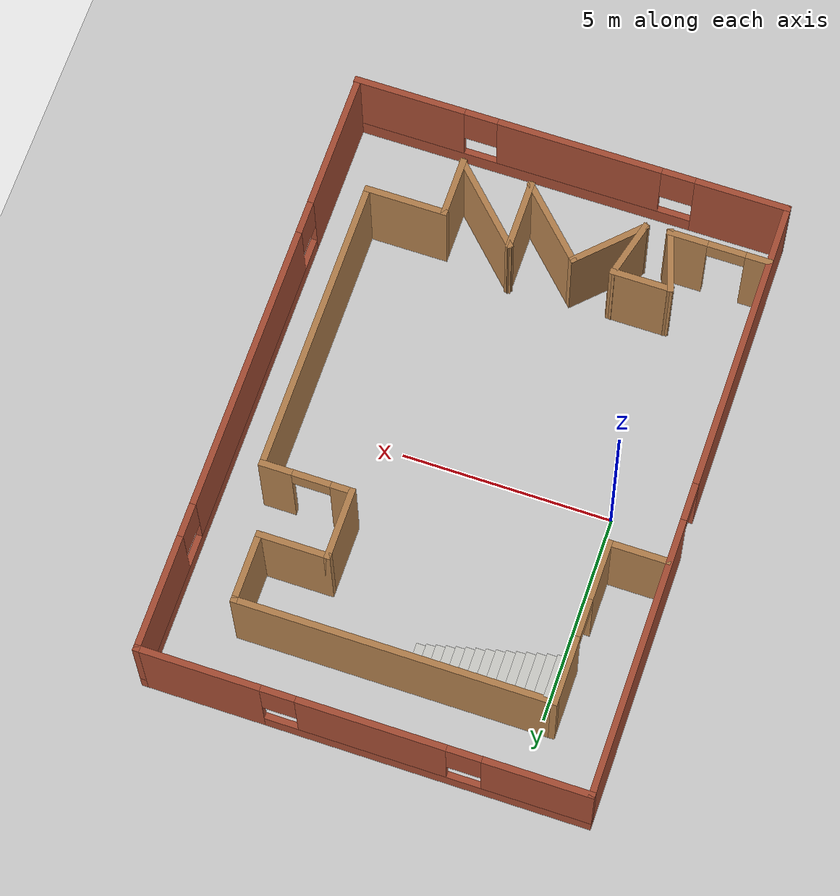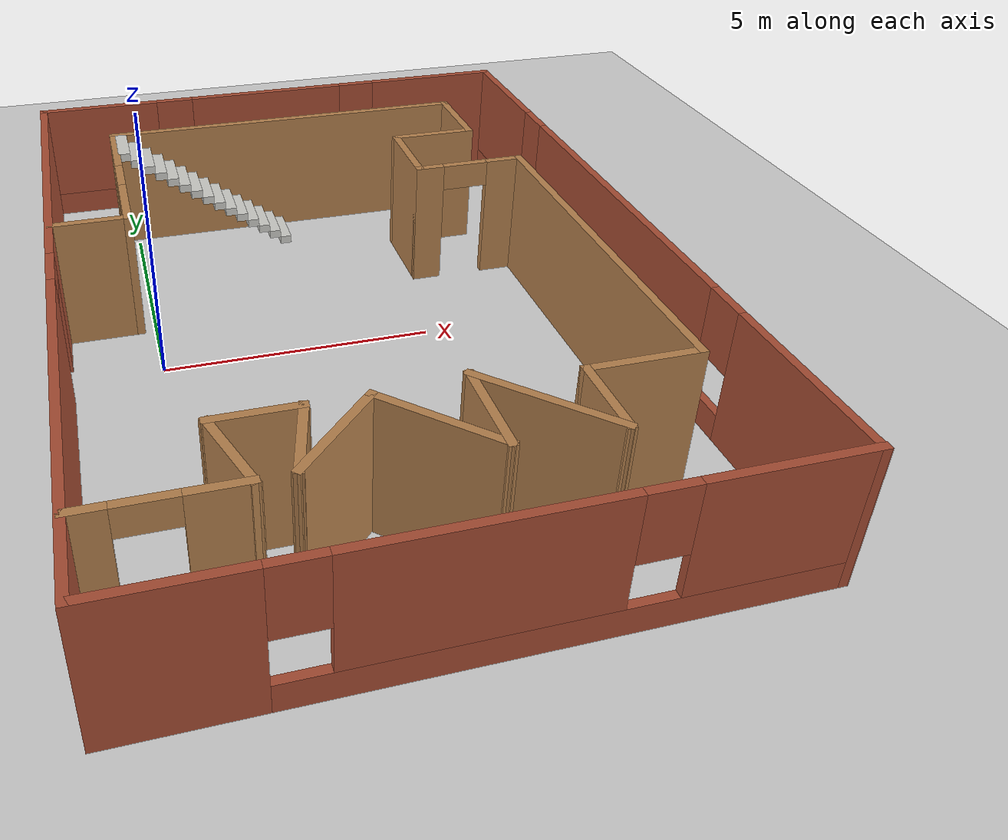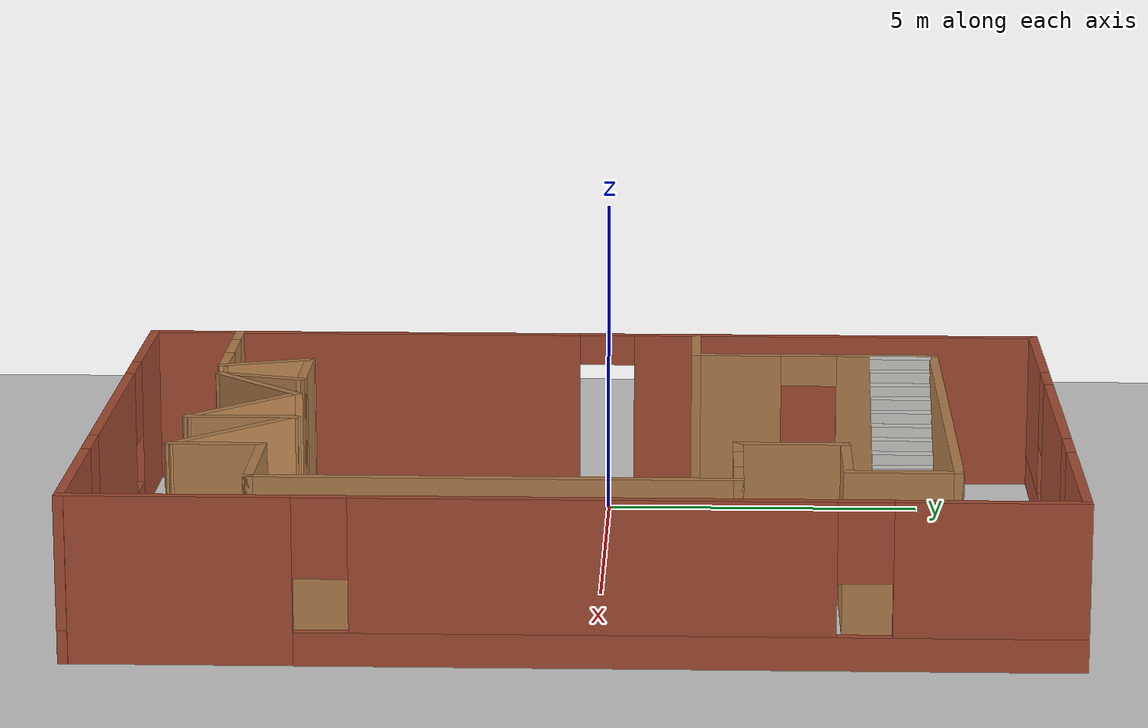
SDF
<sdf version="1.7">
 <world name="default">
  <light name="sun" type="directional">
   <pose>0 0 10 0 -0 0</pose>
   <diffuse>0.8 0.8 0.8 1</diffuse>
   <specular>0.2 0.2 0.2 1</specular>
   <attenuation>
    <range>1000</range>
    <constant>0.9</constant>
    <linear>0.01</linear>
    <quadratic>0.001</quadratic>
   </attenuation>
   <direction>-0.5 0.1 -0.9</direction>
   <spot><inner_angle>0</inner_angle><outer_angle>0</outer_angle><falloff>0</falloff></spot>
  </light>
  <model name="ground_plane">
   <static>1</static>
   <link name="link">
    <collision name="collision">
     <geometry><plane><normal>0 0 1</normal><size>100 100</size></plane></geometry>
     <surface>
      <contact><collide_bitmask>65535</collide_bitmask></contact>
      <friction><ode><mu>100</mu><mu2>50</mu2></ode></friction>
     </surface>
    </collision>
    <visual name="visual">
     <cast_shadows>0</cast_shadows>
     <geometry><plane><normal>0 0 1</normal><size>100 100</size></plane></geometry>
     <material>
      <script><uri>file://media/materials/scripts/gazebo.material</uri><name>Gazebo/Grey</name></script>
     </material>
    </visual>
   </link>
  </model>
  <gravity>0 0 -9.8</gravity>
  <magnetic_field>6e-06 2.3e-05 -4.2e-05</magnetic_field>
  <atmosphere type="adiabatic"/>
  <physics type="ode">
   <max_step_size>0.001</max_step_size>
   <real_time_factor>1</real_time_factor>
   <real_time_update_rate>1000</real_time_update_rate>
  </physics>
  <scene><ambient>0.4 0.4 0.4 1</ambient><background>0.7 0.7 0.7 1</background><shadows>1</shadows></scene>
  <audio><device>default</device></audio>
  <spherical_coordinates>
   <surface_model>EARTH_WGS84</surface_model>
   <latitude_deg>0</latitude_deg>
   <longitude_deg>0</longitude_deg>
   <elevation>0</elevation>
   <heading_deg>0</heading_deg>
  </spherical_coordinates>
  <model name="polygon">
   <pose>3.503 -0.322863 0 0 0 -1.57081</pose>
   <link name="Stairs_3">
    <visual name="Stairs_3_Visual_0">
     <pose>-5.03618 -0.376774 0.083333 0 -0 0</pose>
     <geometry><box><size>1 0.233333 0.166667</size></box></geometry>
     <material>
      <script><uri>file://media/materials/scripts/gazebo.material</uri><name>Gazebo/CeilingTiled</name></script>
      <ambient>1 1 1 1</ambient>
     </material>
     <meta><layer>0</layer></meta>
    </visual>
    <collision name="Stairs_3_Collision_0">
     <geometry><box><size>1 0.233333 0.166667</size></box></geometry>
     <pose>-5.03618 -0.376774 0.083333 0 -0 0</pose>
    </collision>
    <visual name="Stairs_3_Visual_1">
     <pose>-5.03618 -0.610107 0.25 0 -0 0</pose>
     <geometry><box><size>1 0.233333 0.166667</size></box></geometry>
     <material>
      <script><uri>file://media/materials/scripts/gazebo.material</uri><name>Gazebo/CeilingTiled</name></script>
      <ambient>1 1 1 1</ambient>
     </material>
     <meta><layer>0</layer></meta>
    </visual>
    <collision name="Stairs_3_Collision_1">
     <geometry><box><size>1 0.233333 0.166667</size></box></geometry>
     <pose>-5.03618 -0.610107 0.25 0 -0 0</pose>
    </collision>
    <visual name="Stairs_3_Visual_2">
     <pose>-5.03618 -0.84344 0.416667 0 -0 0</pose>
     <geometry><box><size>1 0.233333 0.166667</size></box></geometry>
     <material>
      <script><uri>file://media/materials/scripts/gazebo.material</uri><name>Gazebo/CeilingTiled</name></script>
      <ambient>1 1 1 1</ambient>
     </material>
     <meta><layer>0</layer></meta>
    </visual>
    <collision name="Stairs_3_Collision_2">
     <geometry><box><size>1 0.233333 0.166667</size></box></geometry>
     <pose>-5.03618 -0.84344 0.416667 0 -0 0</pose>
    </collision>
    <visual name="Stairs_3_Visual_3">
     <pose>-5.03618 -1.07677 0.583333 0 -0 0</pose>
     <geometry><box><size>1 0.233333 0.166667</size></box></geometry>
     <material>
      <script><uri>file://media/materials/scripts/gazebo.material</uri><name>Gazebo/CeilingTiled</name></script>
      <ambient>1 1 1 1</ambient>
     </material>
     <meta><layer>0</layer></meta>
    </visual>
    <collision name="Stairs_3_Collision_3">
     <geometry><box><size>1 0.233333 0.166667</size></box></geometry>
     <pose>-5.03618 -1.07677 0.583333 0 -0 0</pose>
    </collision>
    <visual name="Stairs_3_Visual_4">
     <pose>-5.03618 -1.31011 0.75 0 -0 0</pose>
     <geometry><box><size>1 0.233333 0.166667</size></box></geometry>
     <material>
      <script><uri>file://media/materials/scripts/gazebo.material</uri><name>Gazebo/CeilingTiled</name></script>
      <ambient>1 1 1 1</ambient>
     </material>
     <meta><layer>0</layer></meta>
    </visual>
    <collision name="Stairs_3_Collision_4">
     <geometry><box><size>1 0.233333 0.166667</size></box></geometry>
     <pose>-5.03618 -1.31011 0.75 0 -0 0</pose>
    </collision>
    <visual name="Stairs_3_Visual_5">
     <pose>-5.03618 -1.54344 0.916667 0 -0 0</pose>
     <geometry><box><size>1 0.233333 0.166667</size></box></geometry>
     <material>
      <script><uri>file://media/materials/scripts/gazebo.material</uri><name>Gazebo/CeilingTiled</name></script>
      <ambient>1 1 1 1</ambient>
     </material>
     <meta><layer>0</layer></meta>
    </visual>
    <collision name="Stairs_3_Collision_5">
     <geometry><box><size>1 0.233333 0.166667</size></box></geometry>
     <pose>-5.03618 -1.54344 0.916667 0 -0 0</pose>
    </collision>
    <visual name="Stairs_3_Visual_6">
     <pose>-5.03618 -1.77677 1.08333 0 -0 0</pose>
     <geometry><box><size>1 0.233333 0.166667</size></box></geometry>
     <material>
      <script><uri>file://media/materials/scripts/gazebo.material</uri><name>Gazebo/CeilingTiled</name></script>
      <ambient>1 1 1 1</ambient>
     </material>
     <meta><layer>0</layer></meta>
    </visual>
    <collision name="Stairs_3_Collision_6">
     <geometry><box><size>1 0.233333 0.166667</size></box></geometry>
     <pose>-5.03618 -1.77677 1.08333 0 -0 0</pose>
    </collision>
    <visual name="Stairs_3_Visual_7">
     <pose>-5.03618 -2.01011 1.25 0 -0 0</pose>
     <geometry><box><size>1 0.233333 0.166667</size></box></geometry>
     <material>
      <script><uri>file://media/materials/scripts/gazebo.material</uri><name>Gazebo/CeilingTiled</name></script>
      <ambient>1 1 1 1</ambient>
     </material>
     <meta><layer>0</layer></meta>
    </visual>
    <collision name="Stairs_3_Collision_7">
     <geometry><box><size>1 0.233333 0.166667</size></box></geometry>
     <pose>-5.03618 -2.01011 1.25 0 -0 0</pose>
    </collision>
    <visual name="Stairs_3_Visual_8">
     <pose>-5.03618 -2.24344 1.41667 0 -0 0</pose>
     <geometry><box><size>1 0.233333 0.166667</size></box></geometry>
     <material>
      <script><uri>file://media/materials/scripts/gazebo.material</uri><name>Gazebo/CeilingTiled</name></script>
      <ambient>1 1 1 1</ambient>
     </material>
     <meta><layer>0</layer></meta>
    </visual>
    <collision name="Stairs_3_Collision_8">
     <geometry><box><size>1 0.233333 0.166667</size></box></geometry>
     <pose>-5.03618 -2.24344 1.41667 0 -0 0</pose>
    </collision>
    <visual name="Stairs_3_Visual_9">
     <pose>-5.03618 -2.47677 1.58333 0 -0 0</pose>
     <geometry><box><size>1 0.233333 0.166667</size></box></geometry>
     <material>
      <script><uri>file://media/materials/scripts/gazebo.material</uri><name>Gazebo/CeilingTiled</name></script>
      <ambient>1 1 1 1</ambient>
     </material>
     <meta><layer>0</layer></meta>
    </visual>
    <collision name="Stairs_3_Collision_9">
     <geometry><box><size>1 0.233333 0.166667</size></box></geometry>
     <pose>-5.03618 -2.47677 1.58333 0 -0 0</pose>
    </collision>
    <visual name="Stairs_3_Visual_10">
     <pose>-5.03618 -2.71011 1.75 0 -0 0</pose>
     <geometry><box><size>1 0.233333 0.166667</size></box></geometry>
     <material>
      <script><uri>file://media/materials/scripts/gazebo.material</uri><name>Gazebo/CeilingTiled</name></script>
      <ambient>1 1 1 1</ambient>
     </material>
     <meta><layer>0</layer></meta>
    </visual>
    <collision name="Stairs_3_Collision_10">
     <geometry><box><size>1 0.233333 0.166667</size></box></geometry>
     <pose>-5.03618 -2.71011 1.75 0 -0 0</pose>
    </collision>
    <visual name="Stairs_3_Visual_11">
     <pose>-5.03618 -2.94344 1.91667 0 -0 0</pose>
     <geometry><box><size>1 0.233333 0.166667</size></box></geometry>
     <material>
      <script><uri>file://media/materials/scripts/gazebo.material</uri><name>Gazebo/CeilingTiled</name></script>
      <ambient>1 1 1 1</ambient>
     </material>
     <meta><layer>0</layer></meta>
    </visual>
    <collision name="Stairs_3_Collision_11">
     <geometry><box><size>1 0.233333 0.166667</size></box></geometry>
     <pose>-5.03618 -2.94344 1.91667 0 -0 0</pose>
    </collision>
    <visual name="Stairs_3_Visual_12">
     <pose>-5.03618 -3.17677 2.08333 0 -0 0</pose>
     <geometry><box><size>1 0.233333 0.166667</size></box></geometry>
     <material>
      <script><uri>file://media/materials/scripts/gazebo.material</uri><name>Gazebo/CeilingTiled</name></script>
      <ambient>1 1 1 1</ambient>
     </material>
     <meta><layer>0</layer></meta>
    </visual>
    <collision name="Stairs_3_Collision_12">
     <geometry><box><size>1 0.233333 0.166667</size></box></geometry>
     <pose>-5.03618 -3.17677 2.08333 0 -0 0</pose>
    </collision>
    <visual name="Stairs_3_Visual_13">
     <pose>-5.03618 -3.41011 2.25 0 -0 0</pose>
     <geometry><box><size>1 0.233333 0.166667</size></box></geometry>
     <material>
      <script><uri>file://media/materials/scripts/gazebo.material</uri><name>Gazebo/CeilingTiled</name></script>
      <ambient>1 1 1 1</ambient>
     </material>
     <meta><layer>0</layer></meta>
    </visual>
    <collision name="Stairs_3_Collision_13">
     <geometry><box><size>1 0.233333 0.166667</size></box></geometry>
     <pose>-5.03618 -3.41011 2.25 0 -0 0</pose>
    </collision>
    <visual name="Stairs_3_Visual_14">
     <pose>-5.03618 -3.64344 2.41667 0 -0 0</pose>
     <geometry><box><size>1 0.233333 0.166667</size></box></geometry>
     <material>
      <script><uri>file://media/materials/scripts/gazebo.material</uri><name>Gazebo/CeilingTiled</name></script>
      <ambient>1 1 1 1</ambient>
     </material>
     <meta><layer>0</layer></meta>
    </visual>
    <collision name="Stairs_3_Collision_14">
     <geometry><box><size>1 0.233333 0.166667</size></box></geometry>
     <pose>-5.03618 -3.64344 2.41667 0 -0 0</pose>
    </collision>
   </link>
   <link name="Wall_14">
    <pose>-7.3 -0.013508 0 0 -0 -1.5708</pose>
    <visual name="Wall_14_Visual_0">
     <pose>-3.79569 0 1.25 0 -0 0</pose>
     <geometry><box><size>2.91592 0.15 2.5</size></box></geometry>
     <material>
      <script><uri>file://media/materials/scripts/gazebo.material</uri><name>Gazebo/Bricks</name></script>
      <ambient>1 1 1 1</ambient>
     </material>
     <meta><layer>0</layer></meta>
    </visual>
    <collision name="Wall_14_Collision_0">
     <geometry><box><size>2.91592 0.15 2.5</size></box></geometry>
     <pose>-3.79569 0 1.25 0 -0 0</pose>
    </collision>
    <visual name="Wall_14_Visual_1">
     <pose>1.45796 0 0.25 0 -0 0</pose>
     <geometry><box><size>7.59137 0.15 0.5</size></box></geometry>
     <material>
      <script><uri>file://media/materials/scripts/gazebo.material</uri><name>Gazebo/Bricks</name></script>
      <ambient>1 1 1 1</ambient>
     </material>
     <meta><layer>0</layer></meta>
    </visual>
    <collision name="Wall_14_Collision_1">
     <geometry><box><size>7.59137 0.15 0.5</size></box></geometry>
     <pose>1.45796 0 0.25 0 -0 0</pose>
    </collision>
    <visual name="Wall_14_Visual_2">
     <pose>0.184022 0 1.5 0 -0 0</pose>
     <geometry><box><size>3.4435 0.15 2</size></box></geometry>
     <material>
      <script><uri>file://media/materials/scripts/gazebo.material</uri><name>Gazebo/Bricks</name></script>
      <ambient>1 1 1 1</ambient>
     </material>
     <meta><layer>0</layer></meta>
    </visual>
    <collision name="Wall_14_Collision_2">
     <geometry><box><size>3.4435 0.15 2</size></box></geometry>
     <pose>0.184022 0 1.5 0 -0 0</pose>
    </collision>
    <visual name="Wall_14_Visual_3">
     <pose>3.97971 0 1.5 0 -0 0</pose>
     <geometry><box><size>2.54787 0.15 2</size></box></geometry>
     <material>
      <script><uri>file://media/materials/scripts/gazebo.material</uri><name>Gazebo/Bricks</name></script>
      <ambient>1 1 1 1</ambient>
     </material>
     <meta><layer>0</layer></meta>
    </visual>
    <collision name="Wall_14_Collision_3">
     <geometry><box><size>2.54787 0.15 2</size></box></geometry>
     <pose>3.97971 0 1.5 0 -0 0</pose>
    </collision>
    <visual name="Wall_14_Visual_4">
     <pose>-1.93773 0 1.9 0 -0 0</pose>
     <geometry><box><size>0.8 0.15 1.2</size></box></geometry>
     <material>
      <script><uri>file://media/materials/scripts/gazebo.material</uri><name>Gazebo/Bricks</name></script>
      <ambient>1 1 1 1</ambient>
     </material>
     <meta><layer>0</layer></meta>
    </visual>
    <collision name="Wall_14_Collision_4">
     <geometry><box><size>0.8 0.15 1.2</size></box></geometry>
     <pose>-1.93773 0 1.9 0 -0 0</pose>
    </collision>
    <visual name="Wall_14_Visual_5">
     <pose>2.30577 0 1.9 0 -0 0</pose>
     <geometry><box><size>0.8 0.15 1.2</size></box></geometry>
     <material>
      <script><uri>file://media/materials/scripts/gazebo.material</uri><name>Gazebo/Bricks</name></script>
      <ambient>1 1 1 1</ambient>
     </material>
     <meta><layer>0</layer></meta>
    </visual>
    <collision name="Wall_14_Collision_5">
     <geometry><box><size>0.8 0.15 1.2</size></box></geometry>
     <pose>2.30577 0 1.9 0 -0 0</pose>
    </collision>
   </link>
   <link name="Wall_15">
    <pose>0 -5.19215 0 0 -0 0</pose>
    <visual name="Wall_15_Visual_0">
     <pose>-4.03484 0 1.25 0 -0 0</pose>
     <geometry><box><size>6.68031 0.15 2.5</size></box></geometry>
     <material>
      <script><uri>file://media/materials/scripts/gazebo.material</uri><name>Gazebo/Bricks</name></script>
      <ambient>1 1 1 1</ambient>
     </material>
     <meta><layer>0</layer></meta>
    </visual>
    <collision name="Wall_15_Collision_0">
     <geometry><box><size>6.68031 0.15 2.5</size></box></geometry>
     <pose>-4.03484 0 1.25 0 -0 0</pose>
    </collision>
    <visual name="Wall_15_Visual_1">
     <pose>3.79015 0 1.25 0 -0 0</pose>
     <geometry><box><size>7.16969 0.15 2.5</size></box></geometry>
     <material>
      <script><uri>file://media/materials/scripts/gazebo.material</uri><name>Gazebo/Bricks</name></script>
      <ambient>1 1 1 1</ambient>
     </material>
     <meta><layer>0</layer></meta>
    </visual>
    <collision name="Wall_15_Collision_1">
     <geometry><box><size>7.16969 0.15 2.5</size></box></geometry>
     <pose>3.79015 0 1.25 0 -0 0</pose>
    </collision>
    <visual name="Wall_15_Visual_2">
     <pose>-0.244689 0 2.25 0 -0 0</pose>
     <geometry><box><size>0.9 0.15 0.5</size></box></geometry>
     <material>
      <script><uri>file://media/materials/scripts/gazebo.material</uri><name>Gazebo/Bricks</name></script>
      <ambient>1 1 1 1</ambient>
     </material>
     <meta><layer>0</layer></meta>
    </visual>
    <collision name="Wall_15_Collision_2">
     <geometry><box><size>0.9 0.15 0.5</size></box></geometry>
     <pose>-0.244689 0 2.25 0 -0 0</pose>
    </collision>
   </link>
   <link name="Wall_16">
    <pose>7.3 -0 0 0 -0 1.5708</pose>
    <visual name="Wall_16_Visual_0">
     <pose>-4.13122 0 1.25 0 -0 0</pose>
     <geometry><box><size>2.27187 0.15 2.5</size></box></geometry>
     <material>
      <script><uri>file://media/materials/scripts/gazebo.material</uri><name>Gazebo/Bricks</name></script>
      <ambient>1 1 1 1</ambient>
     </material>
     <meta><layer>0</layer></meta>
    </visual>
    <collision name="Wall_16_Collision_0">
     <geometry><box><size>2.27187 0.15 2.5</size></box></geometry>
     <pose>-4.13122 0 1.25 0 -0 0</pose>
    </collision>
    <visual name="Wall_16_Visual_1">
     <pose>1.13594 0 0.25 0 -0 0</pose>
     <geometry><box><size>8.26243 0.15 0.5</size></box></geometry>
     <material>
      <script><uri>file://media/materials/scripts/gazebo.material</uri><name>Gazebo/Bricks</name></script>
      <ambient>1 1 1 1</ambient>
     </material>
     <meta><layer>0</layer></meta>
    </visual>
    <collision name="Wall_16_Collision_1">
     <geometry><box><size>8.26243 0.15 0.5</size></box></geometry>
     <pose>1.13594 0 0.25 0 -0 0</pose>
    </collision>
    <visual name="Wall_16_Visual_2">
     <pose>-0.21478 0 1.5 0 -0 0</pose>
     <geometry><box><size>3.961 0.15 2</size></box></geometry>
     <material>
      <script><uri>file://media/materials/scripts/gazebo.material</uri><name>Gazebo/Bricks</name></script>
      <ambient>1 1 1 1</ambient>
     </material>
     <meta><layer>0</layer></meta>
    </visual>
    <collision name="Wall_16_Collision_2">
     <geometry><box><size>3.961 0.15 2</size></box></geometry>
     <pose>-0.21478 0 1.5 0 -0 0</pose>
    </collision>
    <visual name="Wall_16_Visual_3">
     <pose>3.91644 0 1.5 0 -0 0</pose>
     <geometry><box><size>2.70143 0.15 2</size></box></geometry>
     <material>
      <script><uri>file://media/materials/scripts/gazebo.material</uri><name>Gazebo/Bricks</name></script>
      <ambient>1 1 1 1</ambient>
     </material>
     <meta><layer>0</layer></meta>
    </visual>
    <collision name="Wall_16_Collision_3">
     <geometry><box><size>2.70143 0.15 2</size></box></geometry>
     <pose>3.91644 0 1.5 0 -0 0</pose>
    </collision>
    <visual name="Wall_16_Visual_4">
     <pose>-2.59528 0 1.9 0 -0 0</pose>
     <geometry><box><size>0.8 0.15 1.2</size></box></geometry>
     <material>
      <script><uri>file://media/materials/scripts/gazebo.material</uri><name>Gazebo/Bricks</name></script>
      <ambient>1 1 1 1</ambient>
     </material>
     <meta><layer>0</layer></meta>
    </visual>
    <collision name="Wall_16_Collision_4">
     <geometry><box><size>0.8 0.15 1.2</size></box></geometry>
     <pose>-2.59528 0 1.9 0 -0 0</pose>
    </collision>
    <visual name="Wall_16_Visual_5">
     <pose>2.16572 0 1.9 0 -0 0</pose>
     <geometry><box><size>0.8 0.15 1.2</size></box></geometry>
     <material>
      <script><uri>file://media/materials/scripts/gazebo.material</uri><name>Gazebo/Bricks</name></script>
      <ambient>1 1 1 1</ambient>
     </material>
     <meta><layer>0</layer></meta>
    </visual>
    <collision name="Wall_16_Collision_5">
     <geometry><box><size>0.8 0.15 1.2</size></box></geometry>
     <pose>2.16572 0 1.9 0 -0 0</pose>
    </collision>
   </link>
   <link name="Wall_17">
    <pose>0 5.175 0 0 -0 3.14159</pose>
    <visual name="Wall_17_Visual_0">
     <pose>-5.6799 0 1.25 0 -0 0</pose>
     <geometry><box><size>3.39019 0.15 2.5</size></box></geometry>
     <material>
      <script><uri>file://media/materials/scripts/gazebo.material</uri><name>Gazebo/Bricks</name></script>
      <ambient>1 1 1 1</ambient>
     </material>
     <meta><layer>0</layer></meta>
    </visual>
    <collision name="Wall_17_Collision_0">
     <geometry><box><size>3.39019 0.15 2.5</size></box></geometry>
     <pose>-5.6799 0 1.25 0 -0 0</pose>
    </collision>
    <visual name="Wall_17_Visual_1">
     <pose>1.6951 0 0.25 0 -0 0</pose>
     <geometry><box><size>11.3598 0.15 0.5</size></box></geometry>
     <material>
      <script><uri>file://media/materials/scripts/gazebo.material</uri><name>Gazebo/Bricks</name></script>
      <ambient>1 1 1 1</ambient>
     </material>
     <meta><layer>0</layer></meta>
    </visual>
    <collision name="Wall_17_Collision_1">
     <geometry><box><size>11.3598 0.15 0.5</size></box></geometry>
     <pose>1.6951 0 0.25 0 -0 0</pose>
    </collision>
    <visual name="Wall_17_Visual_2">
     <pose>0.296439 0 1.5 0 -0 0</pose>
     <geometry><box><size>6.9625 0.15 2</size></box></geometry>
     <material>
      <script><uri>file://media/materials/scripts/gazebo.material</uri><name>Gazebo/Bricks</name></script>
      <ambient>1 1 1 1</ambient>
     </material>
     <meta><layer>0</layer></meta>
    </visual>
    <collision name="Wall_17_Collision_2">
     <geometry><box><size>6.9625 0.15 2</size></box></geometry>
     <pose>0.296439 0 1.5 0 -0 0</pose>
    </collision>
    <visual name="Wall_17_Visual_3">
     <pose>5.97635 0 1.5 0 -0 0</pose>
     <geometry><box><size>2.79731 0.15 2</size></box></geometry>
     <material>
      <script><uri>file://media/materials/scripts/gazebo.material</uri><name>Gazebo/Bricks</name></script>
      <ambient>1 1 1 1</ambient>
     </material>
     <meta><layer>0</layer></meta>
    </visual>
    <collision name="Wall_17_Collision_3">
     <geometry><box><size>2.79731 0.15 2</size></box></geometry>
     <pose>5.97635 0 1.5 0 -0 0</pose>
    </collision>
    <visual name="Wall_17_Visual_4">
     <pose>-3.58481 0 1.9 0 -0 0</pose>
     <geometry><box><size>0.8 0.15 1.2</size></box></geometry>
     <material>
      <script><uri>file://media/materials/scripts/gazebo.material</uri><name>Gazebo/Bricks</name></script>
      <ambient>1 1 1 1</ambient>
     </material>
     <meta><layer>0</layer></meta>
    </visual>
    <collision name="Wall_17_Collision_4">
     <geometry><box><size>0.8 0.15 1.2</size></box></geometry>
     <pose>-3.58481 0 1.9 0 -0 0</pose>
    </collision>
    <visual name="Wall_17_Visual_5">
     <pose>4.17769 0 1.9 0 -0 0</pose>
     <geometry><box><size>0.8 0.15 1.2</size></box></geometry>
     <material>
      <script><uri>file://media/materials/scripts/gazebo.material</uri><name>Gazebo/Bricks</name></script>
      <ambient>1 1 1 1</ambient>
     </material>
     <meta><layer>0</layer></meta>
    </visual>
    <collision name="Wall_17_Collision_5">
     <geometry><box><size>0.8 0.15 1.2</size></box></geometry>
     <pose>4.17769 0 1.9 0 -0 0</pose>
    </collision>
   </link>
   <link name="Wall_21">
    <collision name="Wall_21_Collision">
     <geometry><box><size>1.5 0.15 2.5</size></box></geometry>
     <pose>0 0 1.25 0 -0 0</pose>
    </collision>
    <visual name="Wall_21_Visual">
     <pose>0 0 1.25 0 -0 0</pose>
     <geometry><box><size>1.5 0.15 2.5</size></box></geometry>
     <material>
      <script><uri>file://media/materials/scripts/gazebo.material</uri><name>Gazebo/Wood</name></script>
      <ambient>1 1 1 1</ambient>
     </material>
     <meta><layer>0</layer></meta>
    </visual>
    <pose>-1.72819 -4.47328 0 0 -0 1.5708</pose>
   </link>
   <link name="Wall_22">
    <pose>-3.65319 -3.79828 0 0 -0 3.14159</pose>
    <visual name="Wall_22_Visual_0">
     <pose>-1.27291 0 1.25 0 -0 0</pose>
     <geometry><box><size>1.45418 0.15 2.5</size></box></geometry>
     <material>
      <script><uri>file://media/materials/scripts/gazebo.material</uri><name>Gazebo/Wood</name></script>
      <ambient>1 1 1 1</ambient>
     </material>
     <meta><layer>0</layer></meta>
    </visual>
    <collision name="Wall_22_Collision_0">
     <geometry><box><size>1.45418 0.15 2.5</size></box></geometry>
     <pose>-1.27291 0 1.25 0 -0 0</pose>
    </collision>
    <visual name="Wall_22_Visual_1">
     <pose>1.17709 0 1.25 0 -0 0</pose>
     <geometry><box><size>1.64582 0.15 2.5</size></box></geometry>
     <material>
      <script><uri>file://media/materials/scripts/gazebo.material</uri><name>Gazebo/Wood</name></script>
      <ambient>1 1 1 1</ambient>
     </material>
     <meta><layer>0</layer></meta>
    </visual>
    <collision name="Wall_22_Collision_1">
     <geometry><box><size>1.64582 0.15 2.5</size></box></geometry>
     <pose>1.17709 0 1.25 0 -0 0</pose>
    </collision>
    <visual name="Wall_22_Visual_2">
     <pose>-0.095821 0 2.25 0 -0 0</pose>
     <geometry><box><size>0.9 0.15 0.5</size></box></geometry>
     <material>
      <script><uri>file://media/materials/scripts/gazebo.material</uri><name>Gazebo/Wood</name></script>
      <ambient>1 1 1 1</ambient>
     </material>
     <meta><layer>0</layer></meta>
    </visual>
    <collision name="Wall_22_Collision_2">
     <geometry><box><size>0.9 0.15 0.5</size></box></geometry>
     <pose>-0.095821 0 2.25 0 -0 0</pose>
    </collision>
   </link>
   <link name="Wall_24">
    <collision name="Wall_24_Collision">
     <geometry><box><size>7.5 0.15 2.5</size></box></geometry>
     <pose>0 0 1.25 0 -0 0</pose>
    </collision>
    <visual name="Wall_24_Visual">
     <pose>0 0 1.25 0 -0 0</pose>
     <geometry><box><size>7.5 0.15 2.5</size></box></geometry>
     <material>
      <script><uri>file://media/materials/scripts/gazebo.material</uri><name>Gazebo/Wood</name></script>
      <ambient>1 1 1 1</ambient>
     </material>
     <meta><layer>0</layer></meta>
    </visual>
    <pose>-5.57819 -0.12328 0 0 -0 1.5708</pose>
   </link>
   <link name="Wall_25">
    <collision name="Wall_25_Collision">
     <geometry><box><size>1.75 0.15 2.5</size></box></geometry>
     <pose>0 0 1.25 0 -0 0</pose>
    </collision>
    <visual name="Wall_25_Visual">
     <pose>0 0 1.25 0 -0 0</pose>
     <geometry><box><size>1.75 0.15 2.5</size></box></geometry>
     <material>
      <script><uri>file://media/materials/scripts/gazebo.material</uri><name>Gazebo/Wood</name></script>
      <ambient>1 1 1 1</ambient>
     </material>
     <meta><layer>0</layer></meta>
    </visual>
    <pose>-4.77819 3.55172 0 0 -0 0</pose>
   </link>
   <link name="Wall_26">
    <collision name="Wall_26_Collision">
     <geometry><box><size>1.75 0.15 2.5</size></box></geometry>
     <pose>0 0 1.25 0 -0 0</pose>
    </collision>
    <visual name="Wall_26_Visual">
     <pose>0 0 1.25 0 -0 0</pose>
     <geometry><box><size>1.75 0.15 2.5</size></box></geometry>
     <material>
      <script><uri>file://media/materials/scripts/gazebo.material</uri><name>Gazebo/Wood</name></script>
      <ambient>1 1 1 1</ambient>
     </material>
     <meta><layer>0</layer></meta>
    </visual>
    <pose>-3.97819 2.75172 0 0 -0 -1.5708</pose>
   </link>
   <link name="Wall_27">
    <collision name="Wall_27_Collision">
     <geometry><box><size>1.75 0.15 2.5</size></box></geometry>
     <pose>0 0 1.25 0 -0 0</pose>
    </collision>
    <visual name="Wall_27_Visual">
     <pose>0 0 1.25 0 -0 0</pose>
     <geometry><box><size>1.75 0.15 2.5</size></box></geometry>
     <material>
      <script><uri>file://media/materials/scripts/gazebo.material</uri><name>Gazebo/Wood</name></script>
      <ambient>1 1 1 1</ambient>
     </material>
     <meta><layer>0</layer></meta>
    </visual>
    <pose>-3.17819 1.95172 0 0 -0 0</pose>
   </link>
   <link name="Wall_28">
    <pose>-2.37819 3.00172 0 0 -0 1.5708</pose>
    <visual name="Wall_28_Visual_0">
     <pose>-0.841343 0 1.25 0 -0 0</pose>
     <geometry><box><size>0.567313 0.15 2.5</size></box></geometry>
     <material>
      <script><uri>file://media/materials/scripts/gazebo.material</uri><name>Gazebo/Wood</name></script>
      <ambient>1 1 1 1</ambient>
     </material>
     <meta><layer>0</layer></meta>
    </visual>
    <collision name="Wall_28_Collision_0">
     <geometry><box><size>0.567313 0.15 2.5</size></box></geometry>
     <pose>-0.841343 0 1.25 0 -0 0</pose>
    </collision>
    <visual name="Wall_28_Visual_1">
     <pose>0.733657 0 1.25 0 -0 0</pose>
     <geometry><box><size>0.782687 0.15 2.5</size></box></geometry>
     <material>
      <script><uri>file://media/materials/scripts/gazebo.material</uri><name>Gazebo/Wood</name></script>
      <ambient>1 1 1 1</ambient>
     </material>
     <meta><layer>0</layer></meta>
    </visual>
    <collision name="Wall_28_Collision_1">
     <geometry><box><size>0.782687 0.15 2.5</size></box></geometry>
     <pose>0.733657 0 1.25 0 -0 0</pose>
    </collision>
    <visual name="Wall_28_Visual_2">
     <pose>-0.107687 0 2.25 0 -0 0</pose>
     <geometry><box><size>0.9 0.15 0.5</size></box></geometry>
     <material>
      <script><uri>file://media/materials/scripts/gazebo.material</uri><name>Gazebo/Wood</name></script>
      <ambient>1 1 1 1</ambient>
     </material>
     <meta><layer>0</layer></meta>
    </visual>
    <collision name="Wall_28_Collision_2">
     <geometry><box><size>0.9 0.15 0.5</size></box></geometry>
     <pose>-0.107687 0 2.25 0 -0 0</pose>
    </collision>
   </link>
   <link name="Wall_29">
    <collision name="Wall_29_Collision">
     <geometry><box><size>7.25 0.15 2.5</size></box></geometry>
     <pose>0 0 1.25 0 -0 0</pose>
    </collision>
    <visual name="Wall_29_Visual">
     <pose>0 0 1.25 0 -0 0</pose>
     <geometry><box><size>7.25 0.15 2.5</size></box></geometry>
     <material>
      <script><uri>file://media/materials/scripts/gazebo.material</uri><name>Gazebo/Wood</name></script>
      <ambient>1 1 1 1</ambient>
     </material>
     <meta><layer>0</layer></meta>
    </visual>
    <pose>1.17181 4.05172 0 0 -0 0</pose>
   </link>
   <link name="Wall_30">
    <collision name="Wall_30_Collision">
     <geometry><box><size>2 0.15 2.5</size></box></geometry>
     <pose>0 0 1.25 0 -0 0</pose>
    </collision>
    <visual name="Wall_30_Visual">
     <pose>0 0 1.25 0 -0 0</pose>
     <geometry><box><size>2 0.15 2.5</size></box></geometry>
     <material>
      <script><uri>file://media/materials/scripts/gazebo.material</uri><name>Gazebo/Wood</name></script>
      <ambient>0.996078 0.47451 0.0196078 1</ambient>
     </material>
     <meta><layer>0</layer></meta>
    </visual>
    <pose>4.72181 3.12672 0 0 -0 -1.5708</pose>
   </link>
   <link name="Wall_31">
    <collision name="Wall_31_Collision">
     <geometry><box><size>1.5 0.15 2.5</size></box></geometry>
     <pose>0 0 1.25 0 -0 0</pose>
    </collision>
    <visual name="Wall_31_Visual">
     <pose>0 0 1.25 0 -0 0</pose>
     <geometry><box><size>1.5 0.15 2.5</size></box></geometry>
     <material>
      <script><uri>file://media/materials/scripts/gazebo.material</uri><name>Gazebo/Wood</name></script>
      <ambient>1 1 1 1</ambient>
     </material>
     <meta><layer>0</layer></meta>
    </visual>
    <pose>5.39681 2.20172 0 0 -0 0</pose>
   </link>
   <link name="Wall_32">
    <collision name="Wall_32_Collision">
     <geometry><box><size>2.5 0.15 2.5</size></box></geometry>
     <pose>0 0 1.25 0 -0 0</pose>
    </collision>
    <visual name="Wall_32_Visual">
     <pose>0 0 1.25 0 -0 0</pose>
     <geometry><box><size>2.5 0.15 2.5</size></box></geometry>
     <material>
      <script><uri>file://media/materials/scripts/gazebo.material</uri><name>Gazebo/Wood</name></script>
      <ambient>1 1 1 1</ambient>
     </material>
     <meta><layer>0</layer></meta>
    </visual>
    <pose>5.24096 1.37087 0 0 -0 -2.35619</pose>
   </link>
   <link name="Wall_33">
    <collision name="Wall_33_Collision">
     <geometry><box><size>1.75 0.15 2.5</size></box></geometry>
     <pose>0 0 1.25 0 -0 0</pose>
    </collision>
    <visual name="Wall_33_Visual">
     <pose>0 0 1.25 0 -0 0</pose>
     <geometry><box><size>1.75 0.15 2.5</size></box></geometry>
     <material>
      <script><uri>file://media/materials/scripts/gazebo.material</uri><name>Gazebo/Wood</name></script>
      <ambient>1 1 1 1</ambient>
     </material>
     <meta><layer>0</layer></meta>
    </visual>
    <pose>5.21011 0.540019 0 0 -0 0</pose>
   </link>
   <link name="Wall_34">
    <collision name="Wall_34_Collision">
     <geometry><box><size>2.25 0.15 2.5</size></box></geometry>
     <pose>0 0 1.25 0 -0 0</pose>
    </collision>
    <visual name="Wall_34_Visual">
     <pose>0 0 1.25 0 -0 0</pose>
     <geometry><box><size>2.25 0.15 2.5</size></box></geometry>
     <material>
      <script><uri>file://media/materials/scripts/gazebo.material</uri><name>Gazebo/Wood</name></script>
      <ambient>1 1 1 1</ambient>
     </material>
     <meta><layer>0</layer></meta>
    </visual>
    <pose>5.26765 -0.202443 0 0 -0 -2.35619</pose>
   </link>
   <link name="Wall_35">
    <collision name="Wall_35_Collision">
     <geometry><box><size>2 0.15 2.5</size></box></geometry>
     <pose>0 0 1.25 0 -0 0</pose>
    </collision>
    <visual name="Wall_35_Visual">
     <pose>0 0 1.25 0 -0 0</pose>
     <geometry><box><size>2 0.15 2.5</size></box></geometry>
     <material>
      <script><uri>file://media/materials/scripts/gazebo.material</uri><name>Gazebo/Wood</name></script>
      <ambient>1 1 1 1</ambient>
     </material>
     <meta><layer>0</layer></meta>
    </visual>
    <pose>5.17926 -1.59898 0 0 -0 -0.785398</pose>
   </link>
   <link name="Wall_36">
    <collision name="Wall_36_Collision">
     <geometry><box><size>1.5 0.15 2.5</size></box></geometry>
     <pose>0 0 1.25 0 -0 0</pose>
    </collision>
    <visual name="Wall_36_Visual">
     <pose>0 0 1.25 0 -0 0</pose>
     <geometry><box><size>1.5 0.15 2.5</size></box></geometry>
     <material>
      <script><uri>file://media/materials/scripts/gazebo.material</uri><name>Gazebo/Wood</name></script>
      <ambient>1 1 1 1</ambient>
     </material>
     <meta><layer>0</layer></meta>
    </visual>
    <pose>5.18133 -2.07835 0 0 -0 2.87979</pose>
   </link>
   <link name="Wall_37">
    <collision name="Wall_37_Collision">
     <geometry><box><size>1.5 0.15 2.5</size></box></geometry>
     <pose>0 0 1.25 0 -0 0</pose>
    </collision>
    <visual name="Wall_37_Visual">
     <pose>0 0 1.25 0 -0 0</pose>
     <geometry><box><size>1.5 0.15 2.5</size></box></geometry>
     <material>
      <script><uri>file://media/materials/scripts/gazebo.material</uri><name>Gazebo/Wood</name></script>
      <ambient>1 0.764706 0.305882 1</ambient>
     </material>
     <meta><layer>0</layer></meta>
    </visual>
    <pose>4.52933 -2.57865 0 0 -0 -1.5708</pose>
   </link>
   <link name="Wall_38">
    <collision name="Wall_38_Collision">
     <geometry><box><size>1.57085 0.15 2.5</size></box></geometry>
     <pose>0 0 1.25 0 -0 0</pose>
    </collision>
    <visual name="Wall_38_Visual">
     <pose>0 0 1.25 0 -0 0</pose>
     <geometry><box><size>1.57085 0.15 2.5</size></box></geometry>
     <material>
      <script><uri>file://media/materials/scripts/gazebo.material</uri><name>Gazebo/Wood</name></script>
      <ambient>0.435294 0.796078 0.67451 1</ambient>
     </material>
     <meta><layer>0</layer></meta>
    </visual>
    <pose>5.2077 -3.04265 0 0 -0 0.301556</pose>
   </link>
   <link name="Wall_39">
    <pose>5.87626 -4.00665 0 0 -0 -1.5708</pose>
    <visual name="Wall_39_Visual_0">
     <pose>-0.763233 0 1.25 0 -0 0</pose>
     <geometry><box><size>0.973533 0.15 2.5</size></box></geometry>
     <material>
      <script><uri>file://media/materials/scripts/gazebo.material</uri><name>Gazebo/Wood</name></script>
      <ambient>0.435294 0.796078 0.67451 1</ambient>
     </material>
     <meta><layer>0</layer></meta>
    </visual>
    <collision name="Wall_39_Collision_0">
     <geometry><box><size>0.973533 0.15 2.5</size></box></geometry>
     <pose>-0.763233 0 1.25 0 -0 0</pose>
    </collision>
    <visual name="Wall_39_Visual_1">
     <pose>0.936767 0 1.25 0 -0 0</pose>
     <geometry><box><size>0.626467 0.15 2.5</size></box></geometry>
     <material>
      <script><uri>file://media/materials/scripts/gazebo.material</uri><name>Gazebo/Wood</name></script>
      <ambient>0.435294 0.796078 0.67451 1</ambient>
     </material>
     <meta><layer>0</layer></meta>
    </visual>
    <collision name="Wall_39_Collision_1">
     <geometry><box><size>0.626467 0.15 2.5</size></box></geometry>
     <pose>0.936767 0 1.25 0 -0 0</pose>
    </collision>
    <visual name="Wall_39_Visual_2">
     <pose>0.173533 0 2.25 0 -0 0</pose>
     <geometry><box><size>0.9 0.15 0.5</size></box></geometry>
     <material>
      <script><uri>file://media/materials/scripts/gazebo.material</uri><name>Gazebo/Wood</name></script>
      <ambient>0.435294 0.796078 0.67451 1</ambient>
     </material>
     <meta><layer>0</layer></meta>
    </visual>
    <collision name="Wall_39_Collision_2">
     <geometry><box><size>0.9 0.15 0.5</size></box></geometry>
     <pose>0.173533 0 2.25 0 -0 0</pose>
    </collision>
   </link>
   <static>1</static>
  </model>
 </world>
</sdf>
